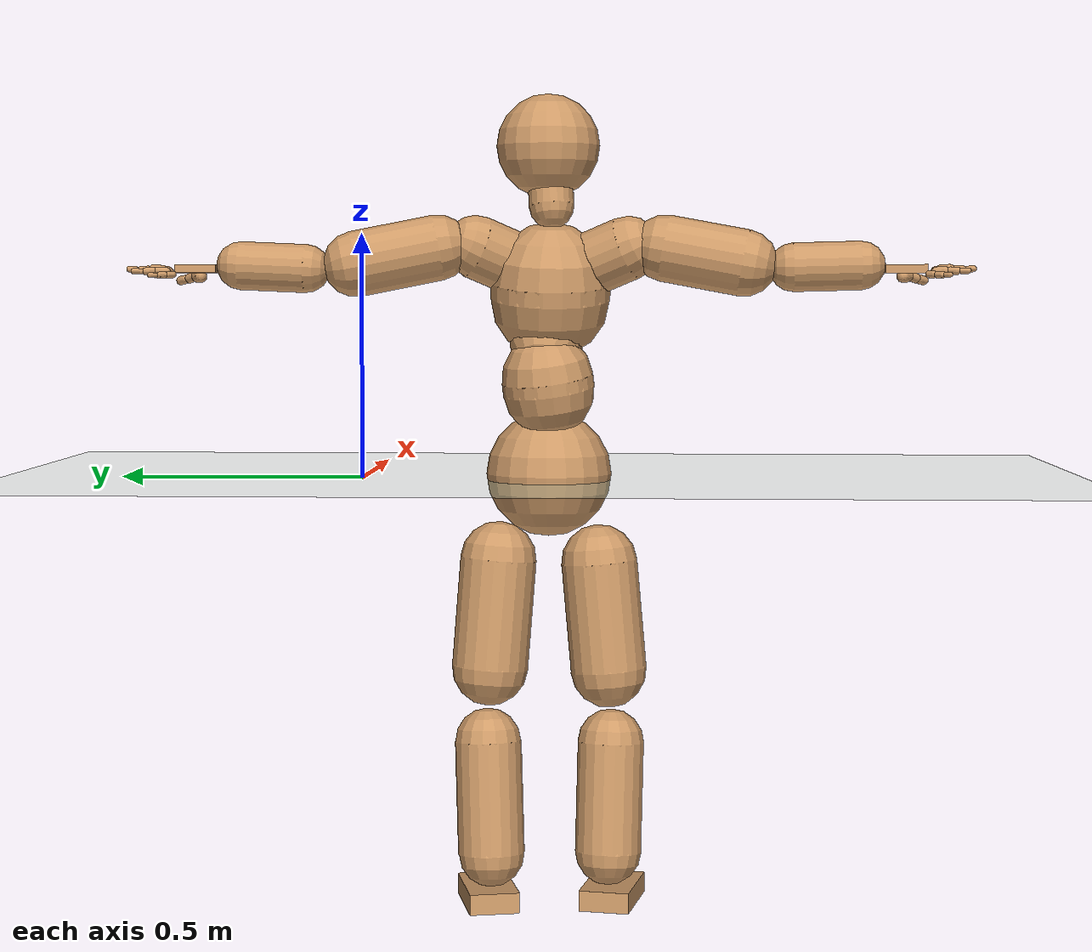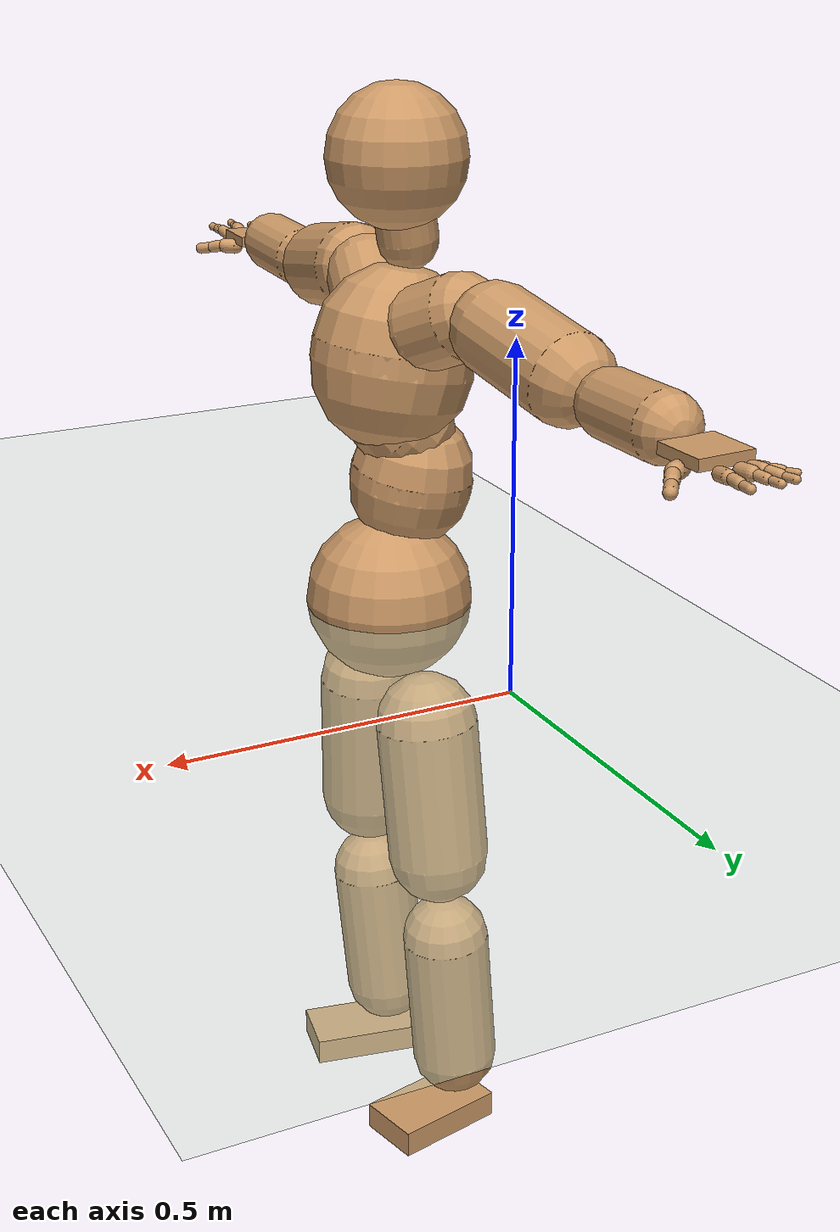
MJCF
<mujoco model="humanoid">
  <compiler coordinate="local" angle="radian"/>
  <default>
    <joint damping="0.0" armature="0.01" stiffness="0.0" limited="true"/>
    <geom conaffinity="1" condim="3" contype="7" margin="0.001" rgba="0.8 0.6 .4 1"/>
  </default>
  <asset>
    <texture type="skybox" builtin="gradient" rgb1=".4 .5 .6" rgb2="0 0 0" width="100" height="100"/>
    <texture builtin="flat" height="1278" mark="cross" markrgb="1 1 1" name="texgeom" random="0.01" rgb1="0.8 0.6 0.4" rgb2="0.8 0.6 0.4" type="cube" width="127"/>
    <texture builtin="checker" height="100" name="texplane" rgb1="0 0 0" rgb2="0.8 0.8 0.8" type="2d" width="100"/>
    <material name="MatPlane" reflectance="0.5" shininess="1" specular="1" texrepeat="60 60" texture="texplane"/>
    <material name="geom" texture="texgeom" texuniform="true"/>
  </asset>
  <worldbody>
    <light cutoff="100" diffuse="1 1 1" dir="-0 0 -1.3" directional="true" exponent="1" pos="0 0 1.3" specular=".1 .1 .1"/>
    <geom conaffinity="1" condim="3" name="floor" pos="0 0 0" rgba="0.8 0.9 0.8 1" size="100 100 .2" type="plane" material="MatPlane"/>
    <body name="Pelvis" pos="0.0013 -0.3837 0.0105">
      <freejoint name="Pelvis"/>
      <geom type="sphere" contype="1" conaffinity="1" density="500" size="0.1281" pos="0.0000 0.0000 0.0000" name="Pelvis"/>
      <body name="L_Hip" pos="-0.0085 0.0976 -0.1015">
        <joint name="L_Hip_x" type="hinge" pos="0 0 0" axis="1 0 0" stiffness="800" damping="80" armature="0.02" range="-180.0000 180.0000"/>
        <joint name="L_Hip_y" type="hinge" pos="0 0 0" axis="0 1 0" stiffness="800" damping="80" armature="0.02" range="-180.0000 180.0000"/>
        <joint name="L_Hip_z" type="hinge" pos="0 0 0" axis="0 0 1" stiffness="800" damping="80" armature="0.02" range="-180.0000 180.0000"/>
        <geom type="capsule" contype="1" conaffinity="1" density="500" fromto="-0.0040 0.0057 -0.0747 -0.0158 0.0227 -0.2989" size="0.0782" name="L_Hip"/>
        <body name="L_Knee" pos="-0.0198 0.0283 -0.3736">
          <joint name="L_Knee_x" type="hinge" pos="0 0 0" axis="1 0 0" stiffness="800" damping="80" armature="0.02" range="-180.0000 180.0000"/>
          <joint name="L_Knee_y" type="hinge" pos="0 0 0" axis="0 1 0" stiffness="800" damping="80" armature="0.02" range="-180.0000 180.0000"/>
          <joint name="L_Knee_z" type="hinge" pos="0 0 0" axis="0 0 1" stiffness="800" damping="80" armature="0.02" range="-180.0000 180.0000"/>
          <geom type="capsule" contype="1" conaffinity="1" density="500" fromto="-0.0070 -0.0026 -0.0769 -0.0280 -0.0103 -0.3076" size="0.0682" name="L_Knee"/>
          <body name="L_Ankle" pos="-0.035 -0.0128 -0.3846">
            <joint name="L_Ankle_x" type="hinge" pos="0 0 0" axis="1 0 0" stiffness="800" damping="80" armature="0.02" range="-180.0000 180.0000"/>
            <joint name="L_Ankle_y" type="hinge" pos="0 0 0" axis="0 1 0" stiffness="800" damping="80" armature="0.02" range="-180.0000 180.0000"/>
            <joint name="L_Ankle_z" type="hinge" pos="0 0 0" axis="0 0 1" stiffness="800" damping="80" armature="0.02" range="-180.0000 180.0000"/>
            <geom type="box" contype="1" conaffinity="1" density="500" pos="0.0554 0.0121 -0.0203" size="0.0894 0.0518 0.0213" quat="0.9942 0.0000 0.0000 0.1077" name="L_Ankle"/>
            <body name="L_Toe" pos="0.1108 0.0243 -0.0406">
              <joint name="L_Toe_x" type="hinge" pos="0 0 0" axis="1 0 0" stiffness="500" damping="50" armature="0.02" range="-180.0000 180.0000"/>
              <joint name="L_Toe_y" type="hinge" pos="0 0 0" axis="0 1 0" stiffness="500" damping="50" armature="0.02" range="-180.0000 180.0000"/>
              <joint name="L_Toe_z" type="hinge" pos="0 0 0" axis="0 0 1" stiffness="500" damping="50" armature="0.02" range="-180.0000 180.0000"/>
              <geom type="box" contype="1" conaffinity="1" density="500" pos="0.0000 0.0000 0.0211" size="0.001 0.0025 0.0011" quat="0.9935 0.0000 0.0000 0.1143" name="L_Toe"/>
            </body>
          </body>
        </body>
      </body>
      <body name="R_Hip" pos="-0.009 -0.0975 -0.1076">
        <joint name="R_Hip_x" type="hinge" pos="0 0 0" axis="1 0 0" stiffness="800" damping="80" armature="0.02" range="-180.0000 180.0000"/>
        <joint name="R_Hip_y" type="hinge" pos="0 0 0" axis="0 1 0" stiffness="800" damping="80" armature="0.02" range="-180.0000 180.0000"/>
        <joint name="R_Hip_z" type="hinge" pos="0 0 0" axis="0 0 1" stiffness="800" damping="80" armature="0.02" range="-180.0000 180.0000"/>
        <geom type="capsule" contype="1" conaffinity="1" density="500" fromto="-0.0026 -0.0067 -0.0740 -0.0102 -0.0269 -0.2959" size="0.078" name="R_Hip"/>
        <body name="R_Knee" pos="-0.0128 -0.0336 -0.3699">
          <joint name="R_Knee_x" type="hinge" pos="0 0 0" axis="1 0 0" stiffness="800" damping="80" armature="0.02" range="-180.0000 180.0000"/>
          <joint name="R_Knee_y" type="hinge" pos="0 0 0" axis="0 1 0" stiffness="800" damping="80" armature="0.02" range="-180.0000 180.0000"/>
          <joint name="R_Knee_z" type="hinge" pos="0 0 0" axis="0 0 1" stiffness="800" damping="80" armature="0.02" range="-180.0000 180.0000"/>
          <geom type="capsule" contype="1" conaffinity="1" density="500" fromto="-0.0065 0.0015 -0.0751 -0.0259 0.0062 -0.3003" size="0.0682" name="R_Knee"/>
          <body name="R_Ankle" pos="-0.0324 0.0077 -0.3754">
            <joint name="R_Ankle_x" type="hinge" pos="0 0 0" axis="1 0 0" stiffness="800" damping="80" armature="0.02" range="-180.0000 180.0000"/>
            <joint name="R_Ankle_y" type="hinge" pos="0 0 0" axis="0 1 0" stiffness="800" damping="80" armature="0.02" range="-180.0000 180.0000"/>
            <joint name="R_Ankle_z" type="hinge" pos="0 0 0" axis="0 0 1" stiffness="800" damping="80" armature="0.02" range="-180.0000 180.0000"/>
            <geom type="box" contype="1" conaffinity="1" density="500" pos="0.0524 -0.0099 -0.0218" size="0.0894 0.0518 0.0213" quat="0.9956 0.0000 0.0000 -0.0935" name="R_Ankle"/>
            <body name="R_Toe" pos="0.1047 -0.0198 -0.0436">
              <joint name="R_Toe_x" type="hinge" pos="0 0 0" axis="1 0 0" stiffness="500" damping="50" armature="0.02" range="-180.0000 180.0000"/>
              <joint name="R_Toe_y" type="hinge" pos="0 0 0" axis="0 1 0" stiffness="500" damping="50" armature="0.02" range="-180.0000 180.0000"/>
              <joint name="R_Toe_z" type="hinge" pos="0 0 0" axis="0 0 1" stiffness="500" damping="50" armature="0.02" range="-180.0000 180.0000"/>
              <geom type="box" contype="1" conaffinity="1" density="500" pos="0.0000 0.0000 0.0226" size="0.001 0.0025 0.0011" quat="0.9966 0.0000 0.0000 -0.0827" name="R_Toe"/>
            </body>
          </body>
        </body>
      </body>
      <body name="Torso" pos="-0.0297 -0.0075 0.1217">
        <joint name="Torso_x" type="hinge" pos="0 0 0" axis="1 0 0" stiffness="1000" damping="100" armature="0.02" range="-180.0000 180.0000"/>
        <joint name="Torso_y" type="hinge" pos="0 0 0" axis="0 1 0" stiffness="1000" damping="100" armature="0.02" range="-180.0000 180.0000"/>
        <joint name="Torso_z" type="hinge" pos="0 0 0" axis="0 0 1" stiffness="1000" damping="100" armature="0.02" range="-180.0000 180.0000"/>
        <geom type="capsule" contype="1" conaffinity="1" density="500" fromto="-0.0106 0.0094 0.0747 -0.0071 0.0063 0.0498" size="0.0931" name="Torso"/>
        <body name="Spine" pos="-0.0177 0.0157 0.1244">
          <joint name="Spine_x" type="hinge" pos="0 0 0" axis="1 0 0" stiffness="1000" damping="100" armature="0.02" range="-180.0000 180.0000"/>
          <joint name="Spine_y" type="hinge" pos="0 0 0" axis="0 1 0" stiffness="1000" damping="100" armature="0.02" range="-180.0000 180.0000"/>
          <joint name="Spine_z" type="hinge" pos="0 0 0" axis="0 0 1" stiffness="1000" damping="100" armature="0.02" range="-180.0000 180.0000"/>
          <geom type="capsule" contype="1" conaffinity="1" density="500" fromto="0.0301 -0.0053 0.0297 0.0201 -0.0035 0.0198" size="0.0744" name="Spine"/>
          <body name="Chest" pos="0.0502 -0.0088 0.0495">
            <joint name="Chest_x" type="hinge" pos="0 0 0" axis="1 0 0" stiffness="1000" damping="100" armature="0.02" range="-180.0000 180.0000"/>
            <joint name="Chest_y" type="hinge" pos="0 0 0" axis="0 1 0" stiffness="1000" damping="100" armature="0.02" range="-180.0000 180.0000"/>
            <joint name="Chest_z" type="hinge" pos="0 0 0" axis="0 0 1" stiffness="1000" damping="100" armature="0.02" range="-180.0000 180.0000"/>
            <geom type="capsule" contype="1" conaffinity="1" density="500" fromto="-0.0170 -0.0023 0.0941 -0.0113 -0.0016 0.0627" size="0.1222" name="Chest"/>
            <body name="Neck" pos="-0.0464 -0.0076 0.2174">
              <joint name="Neck_x" type="hinge" pos="0 0 0" axis="1 0 0" stiffness="500" damping="50" armature="0.02" range="-180.0000 180.0000"/>
              <joint name="Neck_y" type="hinge" pos="0 0 0" axis="0 1 0" stiffness="500" damping="50" armature="0.02" range="-180.0000 180.0000"/>
              <joint name="Neck_z" type="hinge" pos="0 0 0" axis="0 0 1" stiffness="500" damping="50" armature="0.02" range="-180.0000 180.0000"/>
              <geom type="capsule" contype="1" conaffinity="1" density="500" fromto="0.0052 0.0020 0.0303 0.0206 0.0078 0.1211" size="0.0455" name="Neck"/>
              <body name="Head" pos="0.0258 0.0098 0.1514">
                <joint name="Head_x" type="hinge" pos="0 0 0" axis="1 0 0" stiffness="500" damping="50" armature="0.02" range="-180.0000 180.0000"/>
                <joint name="Head_y" type="hinge" pos="0 0 0" axis="0 1 0" stiffness="500" damping="50" armature="0.02" range="-180.0000 180.0000"/>
                <joint name="Head_z" type="hinge" pos="0 0 0" axis="0 0 1" stiffness="500" damping="50" armature="0.02" range="-180.0000 180.0000"/>
                <geom type="sphere" contype="1" conaffinity="1" density="500" size="0.1042" pos="0.0000 0.0000 0.0000" name="Head"/>
              </body>
            </body>
            <body name="L_Thorax" pos="-0.0149 0.0623 0.129">
              <joint name="L_Thorax_x" type="hinge" pos="0 0 0" axis="1 0 0" stiffness="500" damping="50" armature="0.02" range="-180.0000 180.0000"/>
              <joint name="L_Thorax_y" type="hinge" pos="0 0 0" axis="0 1 0" stiffness="500" damping="50" armature="0.02" range="-180.0000 180.0000"/>
              <joint name="L_Thorax_z" type="hinge" pos="0 0 0" axis="0 0 1" stiffness="500" damping="50" armature="0.02" range="-180.0000 180.0000"/>
              <geom type="capsule" contype="1" conaffinity="1" density="500" fromto="-0.0085 0.0211 0.0093 -0.0340 0.0846 0.0370" size="0.064" name="L_Thorax"/>
              <body name="L_Shoulder" pos="-0.0425 0.1057 0.0463">
                <joint name="L_Shoulder_x" type="hinge" pos="0 0 0" axis="1 0 0" stiffness="500" damping="50" armature="0.02" range="-180.0000 180.0000"/>
                <joint name="L_Shoulder_y" type="hinge" pos="0 0 0" axis="0 1 0" stiffness="500" damping="50" armature="0.02" range="-180.0000 180.0000"/>
                <joint name="L_Shoulder_z" type="hinge" pos="0 0 0" axis="0 0 1" stiffness="500" damping="50" armature="0.02" range="-180.0000 180.0000"/>
                <geom type="capsule" contype="1" conaffinity="1" density="500" fromto="-0.0064 0.0546 -0.0110 -0.0255 0.2185 -0.0439" size="0.0664" name="L_Shoulder"/>
                <body name="L_Elbow" pos="-0.0319 0.2731 -0.0549">
                  <joint name="L_Elbow_x" type="hinge" pos="0 0 0" axis="1 0 0" stiffness="500" damping="50" armature="0.02" range="-720.0000 720.0000"/>
                  <joint name="L_Elbow_y" type="hinge" pos="0 0 0" axis="0 1 0" stiffness="500" damping="50" armature="0.02" range="-720.0000 720.0000"/>
                  <joint name="L_Elbow_z" type="hinge" pos="0 0 0" axis="0 0 1" stiffness="500" damping="50" armature="0.02" range="-720.0000 720.0000"/>
                  <geom type="capsule" contype="1" conaffinity="1" density="500" fromto="0.0019 0.0446 0.0020 0.0076 0.1786 0.0080" size="0.0484" name="L_Elbow"/>
                  <body name="L_Wrist" pos="0.0094 0.2232 0.01">
                    <joint name="L_Wrist_x" type="hinge" pos="0 0 0" axis="1 0 0" stiffness="300" damping="30" armature="0.02" range="-180.0000 180.0000"/>
                    <joint name="L_Wrist_y" type="hinge" pos="0 0 0" axis="0 1 0" stiffness="300" damping="30" armature="0.02" range="-180.0000 180.0000"/>
                    <joint name="L_Wrist_z" type="hinge" pos="0 0 0" axis="0 0 1" stiffness="300" damping="30" armature="0.02" range="-180.0000 180.0000"/>
                    <geom type="box" contype="1" conaffinity="1" density="500" pos="-0.0021 0.0427 -0.0083" size="0.041 0.0417 0.0082" quat="0.7246 0.0000 0.0000 -0.6891" name="L_Wrist"/>
                    <body name="L_Index1" pos="0.0217 0.1012 -0.0141">
                      <joint name="L_Index1_x" type="hinge" pos="0 0 0" axis="1 0 0" stiffness="100" damping="10" armature="0.02" range="-180.0000 180.0000"/>
                      <joint name="L_Index1_y" type="hinge" pos="0 0 0" axis="0 1 0" stiffness="100" damping="10" armature="0.02" range="-180.0000 180.0000"/>
                      <joint name="L_Index1_z" type="hinge" pos="0 0 0" axis="0 0 1" stiffness="100" damping="10" armature="0.02" range="-180.0000 180.0000"/>
                      <geom type="capsule" contype="1" conaffinity="1" density="500" fromto="0.0006 0.0063 0.0007 0.0022 0.0252 0.0026" size="0.0096" name="L_Index1"/>
                      <body name="L_Index2" pos="0.0028 0.0316 0.0033">
                        <joint name="L_Index2_x" type="hinge" pos="0 0 0" axis="1 0 0" stiffness="100" damping="10" armature="0.02" range="-180.0000 180.0000"/>
                        <joint name="L_Index2_y" type="hinge" pos="0 0 0" axis="0 1 0" stiffness="100" damping="10" armature="0.02" range="-180.0000 180.0000"/>
                        <joint name="L_Index2_z" type="hinge" pos="0 0 0" axis="0 0 1" stiffness="100" damping="10" armature="0.02" range="-180.0000 180.0000"/>
                        <geom type="capsule" contype="1" conaffinity="1" density="500" fromto="0.0001 0.0044 -0.0003 0.0002 0.0177 -0.0011" size="0.0078" name="L_Index2"/>
                        <body name="L_Index3" pos="0.0003 0.0222 -0.0013">
                          <joint name="L_Index3_x" type="hinge" pos="0 0 0" axis="1 0 0" stiffness="100" damping="10" armature="0.02" range="-180.0000 180.0000"/>
                          <joint name="L_Index3_y" type="hinge" pos="0 0 0" axis="0 1 0" stiffness="100" damping="10" armature="0.02" range="-180.0000 180.0000"/>
                          <joint name="L_Index3_z" type="hinge" pos="0 0 0" axis="0 0 1" stiffness="100" damping="10" armature="0.02" range="-180.0000 180.0000"/>
                          <geom type="capsule" contype="1" conaffinity="1" density="500" fromto="0.0005 0.0048 0.0001 0.0018 0.0193 0.0005" size="0.0064" name="L_Index3"/>
                        </body>
                      </body>
                    </body>
                    <body name="L_Middle1" pos="-0.0021 0.108 -0.0112">
                      <joint name="L_Middle1_x" type="hinge" pos="0 0 0" axis="1 0 0" stiffness="100" damping="10" armature="0.02" range="-180.0000 180.0000"/>
                      <joint name="L_Middle1_y" type="hinge" pos="0 0 0" axis="0 1 0" stiffness="100" damping="10" armature="0.02" range="-180.0000 180.0000"/>
                      <joint name="L_Middle1_z" type="hinge" pos="0 0 0" axis="0 0 1" stiffness="100" damping="10" armature="0.02" range="-180.0000 180.0000"/>
                      <geom type="capsule" contype="1" conaffinity="1" density="500" fromto="-0.0007 0.0060 0.0004 -0.0029 0.0239 0.0015" size="0.0099" name="L_Middle1"/>
                      <body name="L_Middle2" pos="-0.0036 0.0298 0.0019">
                        <joint name="L_Middle2_x" type="hinge" pos="0 0 0" axis="1 0 0" stiffness="100" damping="10" armature="0.02" range="-180.0000 180.0000"/>
                        <joint name="L_Middle2_y" type="hinge" pos="0 0 0" axis="0 1 0" stiffness="100" damping="10" armature="0.02" range="-180.0000 180.0000"/>
                        <joint name="L_Middle2_z" type="hinge" pos="0 0 0" axis="0 0 1" stiffness="100" damping="10" armature="0.02" range="-180.0000 180.0000"/>
                        <geom type="capsule" contype="1" conaffinity="1" density="500" fromto="-0.0007 0.0046 -0.0001 -0.0029 0.0183 -0.0006" size="0.0071" name="L_Middle2"/>
                        <body name="L_Middle3" pos="-0.0037 0.0229 -0.0007">
                          <joint name="L_Middle3_x" type="hinge" pos="0 0 0" axis="1 0 0" stiffness="100" damping="10" armature="0.02" range="-180.0000 180.0000"/>
                          <joint name="L_Middle3_y" type="hinge" pos="0 0 0" axis="0 1 0" stiffness="100" damping="10" armature="0.02" range="-180.0000 180.0000"/>
                          <joint name="L_Middle3_z" type="hinge" pos="0 0 0" axis="0 0 1" stiffness="100" damping="10" armature="0.02" range="-180.0000 180.0000"/>
                          <geom type="capsule" contype="1" conaffinity="1" density="500" fromto="-0.0003 0.0050 0.0003 -0.0013 0.0199 0.0010" size="0.0058" name="L_Middle3"/>
                        </body>
                      </body>
                    </body>
                    <body name="L_Pinky1" pos="-0.0431 0.0821 -0.02">
                      <joint name="L_Pinky1_x" type="hinge" pos="0 0 0" axis="1 0 0" stiffness="100" damping="10" armature="0.02" range="-180.0000 180.0000"/>
                      <joint name="L_Pinky1_y" type="hinge" pos="0 0 0" axis="0 1 0" stiffness="100" damping="10" armature="0.02" range="-180.0000 180.0000"/>
                      <joint name="L_Pinky1_z" type="hinge" pos="0 0 0" axis="0 0 1" stiffness="100" damping="10" armature="0.02" range="-180.0000 180.0000"/>
                      <geom type="capsule" contype="1" conaffinity="1" density="500" fromto="-0.0024 0.0029 -0.0001 -0.0097 0.0117 -0.0006" size="0.007" name="L_Pinky1"/>
                      <body name="L_Pinky2" pos="-0.0121 0.0147 -0.0007">
                        <joint name="L_Pinky2_x" type="hinge" pos="0 0 0" axis="1 0 0" stiffness="100" damping="10" armature="0.02" range="-180.0000 180.0000"/>
                        <joint name="L_Pinky2_y" type="hinge" pos="0 0 0" axis="0 1 0" stiffness="100" damping="10" armature="0.02" range="-180.0000 180.0000"/>
                        <joint name="L_Pinky2_z" type="hinge" pos="0 0 0" axis="0 0 1" stiffness="100" damping="10" armature="0.02" range="-180.0000 180.0000"/>
                        <geom type="capsule" contype="1" conaffinity="1" density="500" fromto="-0.0023 0.0030 -0.0003 -0.0092 0.0120 -0.0010" size="0.0067" name="L_Pinky2"/>
                        <body name="L_Pinky3" pos="-0.0115 0.015 -0.0013">
                          <joint name="L_Pinky3_x" type="hinge" pos="0 0 0" axis="1 0 0" stiffness="100" damping="10" armature="0.02" range="-180.0000 180.0000"/>
                          <joint name="L_Pinky3_y" type="hinge" pos="0 0 0" axis="0 1 0" stiffness="100" damping="10" armature="0.02" range="-180.0000 180.0000"/>
                          <joint name="L_Pinky3_z" type="hinge" pos="0 0 0" axis="0 0 1" stiffness="100" damping="10" armature="0.02" range="-180.0000 180.0000"/>
                          <geom type="capsule" contype="1" conaffinity="1" density="500" fromto="-0.0019 0.0034 0.0001 -0.0076 0.0136 0.0006" size="0.005" name="L_Pinky3"/>
                        </body>
                      </body>
                    </body>
                    <body name="L_Ring1" pos="-0.0265 0.0958 -0.0143">
                      <joint name="L_Ring1_x" type="hinge" pos="0 0 0" axis="1 0 0" stiffness="100" damping="10" armature="0.02" range="-180.0000 180.0000"/>
                      <joint name="L_Ring1_y" type="hinge" pos="0 0 0" axis="0 1 0" stiffness="100" damping="10" armature="0.02" range="-180.0000 180.0000"/>
                      <joint name="L_Ring1_z" type="hinge" pos="0 0 0" axis="0 0 1" stiffness="100" damping="10" armature="0.02" range="-180.0000 180.0000"/>
                      <geom type="capsule" contype="1" conaffinity="1" density="500" fromto="-0.0011 0.0055 0.0004 -0.0042 0.0220 0.0014" size="0.0085" name="L_Ring1"/>
                      <body name="L_Ring2" pos="-0.0053 0.0275 0.0018">
                        <joint name="L_Ring2_x" type="hinge" pos="0 0 0" axis="1 0 0" stiffness="100" damping="10" armature="0.02" range="-180.0000 180.0000"/>
                        <joint name="L_Ring2_y" type="hinge" pos="0 0 0" axis="0 1 0" stiffness="100" damping="10" armature="0.02" range="-180.0000 180.0000"/>
                        <joint name="L_Ring2_z" type="hinge" pos="0 0 0" axis="0 0 1" stiffness="100" damping="10" armature="0.02" range="-180.0000 180.0000"/>
                        <geom type="capsule" contype="1" conaffinity="1" density="500" fromto="-0.0014 0.0044 -0.0003 -0.0057 0.0178 -0.0010" size="0.0075" name="L_Ring2"/>
                        <body name="L_Ring3" pos="-0.0071 0.0222 -0.0013">
                          <joint name="L_Ring3_x" type="hinge" pos="0 0 0" axis="1 0 0" stiffness="100" damping="10" armature="0.02" range="-180.0000 180.0000"/>
                          <joint name="L_Ring3_y" type="hinge" pos="0 0 0" axis="0 1 0" stiffness="100" damping="10" armature="0.02" range="-180.0000 180.0000"/>
                          <joint name="L_Ring3_z" type="hinge" pos="0 0 0" axis="0 0 1" stiffness="100" damping="10" armature="0.02" range="-180.0000 180.0000"/>
                          <geom type="capsule" contype="1" conaffinity="1" density="500" fromto="-0.0010 0.0048 0.0001 -0.0041 0.0194 0.0006" size="0.0056" name="L_Ring3"/>
                        </body>
                      </body>
                    </body>
                    <body name="L_Thumb1" pos="0.0285 0.0404 -0.0239">
                      <joint name="L_Thumb1_x" type="hinge" pos="0 0 0" axis="1 0 0" stiffness="100" damping="10" armature="0.02" range="-180.0000 180.0000"/>
                      <joint name="L_Thumb1_y" type="hinge" pos="0 0 0" axis="0 1 0" stiffness="100" damping="10" armature="0.02" range="-180.0000 180.0000"/>
                      <joint name="L_Thumb1_z" type="hinge" pos="0 0 0" axis="0 0 1" stiffness="100" damping="10" armature="0.02" range="-180.0000 180.0000"/>
                      <geom type="capsule" contype="1" conaffinity="1" density="500" fromto="0.0049 0.0033 0.0003 0.0196 0.0133 0.0013" size="0.0125" name="L_Thumb1"/>
                      <body name="L_Thumb2" pos="0.0245 0.0166 0.0017">
                        <joint name="L_Thumb2_x" type="hinge" pos="0 0 0" axis="1 0 0" stiffness="100" damping="10" armature="0.02" range="-180.0000 180.0000"/>
                        <joint name="L_Thumb2_y" type="hinge" pos="0 0 0" axis="0 1 0" stiffness="100" damping="10" armature="0.02" range="-180.0000 180.0000"/>
                        <joint name="L_Thumb2_z" type="hinge" pos="0 0 0" axis="0 0 1" stiffness="100" damping="10" armature="0.02" range="-180.0000 180.0000"/>
                        <geom type="capsule" contype="1" conaffinity="1" density="500" fromto="0.0029 0.0040 -0.0012 0.0115 0.0159 -0.0048" size="0.0099" name="L_Thumb2"/>
                        <body name="L_Thumb3" pos="0.0144 0.0199 -0.006">
                          <joint name="L_Thumb3_x" type="hinge" pos="0 0 0" axis="1 0 0" stiffness="100" damping="10" armature="0.02" range="-180.0000 180.0000"/>
                          <joint name="L_Thumb3_y" type="hinge" pos="0 0 0" axis="0 1 0" stiffness="100" damping="10" armature="0.02" range="-180.0000 180.0000"/>
                          <joint name="L_Thumb3_z" type="hinge" pos="0 0 0" axis="0 0 1" stiffness="100" damping="10" armature="0.02" range="-180.0000 180.0000"/>
                          <geom type="capsule" contype="1" conaffinity="1" density="500" fromto="0.0033 0.0044 -0.0008 0.0131 0.0175 -0.0032" size="0.009" name="L_Thumb3"/>
                        </body>
                      </body>
                    </body>
                  </body>
                </body>
              </body>
            </body>
            <body name="R_Thorax" pos="-0.0237 -0.0665 0.1241">
              <joint name="R_Thorax_x" type="hinge" pos="0 0 0" axis="1 0 0" stiffness="500" damping="50" armature="0.02" range="-180.0000 180.0000"/>
              <joint name="R_Thorax_y" type="hinge" pos="0 0 0" axis="0 1 0" stiffness="500" damping="50" armature="0.02" range="-180.0000 180.0000"/>
              <joint name="R_Thorax_z" type="hinge" pos="0 0 0" axis="0 0 1" stiffness="500" damping="50" armature="0.02" range="-180.0000 180.0000"/>
              <geom type="capsule" contype="1" conaffinity="1" density="500" fromto="-0.0065 -0.0231 0.0097 -0.0261 -0.0924 0.0388" size="0.0652" name="R_Thorax"/>
              <body name="R_Shoulder" pos="-0.0326 -0.1155 0.0485">
                <joint name="R_Shoulder_x" type="hinge" pos="0 0 0" axis="1 0 0" stiffness="500" damping="50" armature="0.02" range="-180.0000 180.0000"/>
                <joint name="R_Shoulder_y" type="hinge" pos="0 0 0" axis="0 1 0" stiffness="500" damping="50" armature="0.02" range="-180.0000 180.0000"/>
                <joint name="R_Shoulder_z" type="hinge" pos="0 0 0" axis="0 0 1" stiffness="500" damping="50" armature="0.02" range="-180.0000 180.0000"/>
                <geom type="capsule" contype="1" conaffinity="1" density="500" fromto="-0.0049 -0.0524 -0.0098 -0.0195 -0.2097 -0.0394" size="0.067" name="R_Shoulder"/>
                <body name="R_Elbow" pos="-0.0244 -0.2622 -0.0492">
                  <joint name="R_Elbow_x" type="hinge" pos="0 0 0" axis="1 0 0" stiffness="500" damping="50" armature="0.02" range="-720.0000 720.0000"/>
                  <joint name="R_Elbow_y" type="hinge" pos="0 0 0" axis="0 1 0" stiffness="500" damping="50" armature="0.02" range="-720.0000 720.0000"/>
                  <joint name="R_Elbow_z" type="hinge" pos="0 0 0" axis="0 0 1" stiffness="500" damping="50" armature="0.02" range="-720.0000 720.0000"/>
                  <geom type="capsule" contype="1" conaffinity="1" density="500" fromto="-0.0002 -0.0446 0.0012 -0.0010 -0.1784 0.0046" size="0.0485" name="R_Elbow"/>
                  <body name="R_Wrist" pos="-0.0012 -0.223 0.0058">
                    <joint name="R_Wrist_x" type="hinge" pos="0 0 0" axis="1 0 0" stiffness="300" damping="30" armature="0.02" range="-180.0000 180.0000"/>
                    <joint name="R_Wrist_y" type="hinge" pos="0 0 0" axis="0 1 0" stiffness="300" damping="30" armature="0.02" range="-180.0000 180.0000"/>
                    <joint name="R_Wrist_z" type="hinge" pos="0 0 0" axis="0 0 1" stiffness="300" damping="30" armature="0.02" range="-180.0000 180.0000"/>
                    <geom type="box" contype="1" conaffinity="1" density="500" pos="-0.0011 -0.0421 -0.0078" size="0.041 0.039 0.0084" quat="0.7161 0.0000 0.0000 0.6979" name="R_Wrist"/>
                    <body name="R_Index1" pos="0.0239 -0.1 -0.013">
                      <joint name="R_Index1_x" type="hinge" pos="0 0 0" axis="1 0 0" stiffness="100" damping="10" armature="0.02" range="-180.0000 180.0000"/>
                      <joint name="R_Index1_y" type="hinge" pos="0 0 0" axis="0 1 0" stiffness="100" damping="10" armature="0.02" range="-180.0000 180.0000"/>
                      <joint name="R_Index1_z" type="hinge" pos="0 0 0" axis="0 0 1" stiffness="100" damping="10" armature="0.02" range="-180.0000 180.0000"/>
                      <geom type="capsule" contype="1" conaffinity="1" density="500" fromto="0.0006 -0.0063 0.0007 0.0022 -0.0252 0.0026" size="0.0096" name="R_Index1"/>
                      <body name="R_Index2" pos="0.0028 -0.0315 0.0033">
                        <joint name="R_Index2_x" type="hinge" pos="0 0 0" axis="1 0 0" stiffness="100" damping="10" armature="0.02" range="-180.0000 180.0000"/>
                        <joint name="R_Index2_y" type="hinge" pos="0 0 0" axis="0 1 0" stiffness="100" damping="10" armature="0.02" range="-180.0000 180.0000"/>
                        <joint name="R_Index2_z" type="hinge" pos="0 0 0" axis="0 0 1" stiffness="100" damping="10" armature="0.02" range="-180.0000 180.0000"/>
                        <geom type="capsule" contype="1" conaffinity="1" density="500" fromto="0.0001 -0.0044 -0.0003 0.0002 -0.0177 -0.0011" size="0.0078" name="R_Index2"/>
                        <body name="R_Index3" pos="0.0003 -0.0222 -0.0013">
                          <joint name="R_Index3_x" type="hinge" pos="0 0 0" axis="1 0 0" stiffness="100" damping="10" armature="0.02" range="-180.0000 180.0000"/>
                          <joint name="R_Index3_y" type="hinge" pos="0 0 0" axis="0 1 0" stiffness="100" damping="10" armature="0.02" range="-180.0000 180.0000"/>
                          <joint name="R_Index3_z" type="hinge" pos="0 0 0" axis="0 0 1" stiffness="100" damping="10" armature="0.02" range="-180.0000 180.0000"/>
                          <geom type="capsule" contype="1" conaffinity="1" density="500" fromto="0.0005 -0.0040 0.0001 0.0018 -0.0161 0.0005" size="0.0067" name="R_Index3"/>
                        </body>
                      </body>
                    </body>
                    <body name="R_Middle1" pos="0 -0.1068 -0.0101">
                      <joint name="R_Middle1_x" type="hinge" pos="0 0 0" axis="1 0 0" stiffness="100" damping="10" armature="0.02" range="-180.0000 180.0000"/>
                      <joint name="R_Middle1_y" type="hinge" pos="0 0 0" axis="0 1 0" stiffness="100" damping="10" armature="0.02" range="-180.0000 180.0000"/>
                      <joint name="R_Middle1_z" type="hinge" pos="0 0 0" axis="0 0 1" stiffness="100" damping="10" armature="0.02" range="-180.0000 180.0000"/>
                      <geom type="capsule" contype="1" conaffinity="1" density="500" fromto="-0.0007 -0.0060 0.0004 -0.0029 -0.0239 0.0015" size="0.0099" name="R_Middle1"/>
                      <body name="R_Middle2" pos="-0.0036 -0.0298 0.0019">
                        <joint name="R_Middle2_x" type="hinge" pos="0 0 0" axis="1 0 0" stiffness="100" damping="10" armature="0.02" range="-180.0000 180.0000"/>
                        <joint name="R_Middle2_y" type="hinge" pos="0 0 0" axis="0 1 0" stiffness="100" damping="10" armature="0.02" range="-180.0000 180.0000"/>
                        <joint name="R_Middle2_z" type="hinge" pos="0 0 0" axis="0 0 1" stiffness="100" damping="10" armature="0.02" range="-180.0000 180.0000"/>
                        <geom type="capsule" contype="1" conaffinity="1" density="500" fromto="-0.0007 -0.0046 -0.0001 -0.0029 -0.0183 -0.0006" size="0.0071" name="R_Middle2"/>
                        <body name="R_Middle3" pos="-0.0037 -0.0229 -0.0007">
                          <joint name="R_Middle3_x" type="hinge" pos="0 0 0" axis="1 0 0" stiffness="100" damping="10" armature="0.02" range="-180.0000 180.0000"/>
                          <joint name="R_Middle3_y" type="hinge" pos="0 0 0" axis="0 1 0" stiffness="100" damping="10" armature="0.02" range="-180.0000 180.0000"/>
                          <joint name="R_Middle3_z" type="hinge" pos="0 0 0" axis="0 0 1" stiffness="100" damping="10" armature="0.02" range="-180.0000 180.0000"/>
                          <geom type="capsule" contype="1" conaffinity="1" density="500" fromto="-0.0003 -0.0042 0.0003 -0.0013 -0.0167 0.0010" size="0.0061" name="R_Middle3"/>
                        </body>
                      </body>
                    </body>
                    <body name="R_Pinky1" pos="-0.041 -0.0809 -0.0189">
                      <joint name="R_Pinky1_x" type="hinge" pos="0 0 0" axis="1 0 0" stiffness="100" damping="10" armature="0.02" range="-180.0000 180.0000"/>
                      <joint name="R_Pinky1_y" type="hinge" pos="0 0 0" axis="0 1 0" stiffness="100" damping="10" armature="0.02" range="-180.0000 180.0000"/>
                      <joint name="R_Pinky1_z" type="hinge" pos="0 0 0" axis="0 0 1" stiffness="100" damping="10" armature="0.02" range="-180.0000 180.0000"/>
                      <geom type="capsule" contype="1" conaffinity="1" density="500" fromto="-0.0024 -0.0029 -0.0001 -0.0097 -0.0117 -0.0006" size="0.007" name="R_Pinky1"/>
                      <body name="R_Pinky2" pos="-0.0121 -0.0147 -0.0007">
                        <joint name="R_Pinky2_x" type="hinge" pos="0 0 0" axis="1 0 0" stiffness="100" damping="10" armature="0.02" range="-180.0000 180.0000"/>
                        <joint name="R_Pinky2_y" type="hinge" pos="0 0 0" axis="0 1 0" stiffness="100" damping="10" armature="0.02" range="-180.0000 180.0000"/>
                        <joint name="R_Pinky2_z" type="hinge" pos="0 0 0" axis="0 0 1" stiffness="100" damping="10" armature="0.02" range="-180.0000 180.0000"/>
                        <geom type="capsule" contype="1" conaffinity="1" density="500" fromto="-0.0023 -0.0030 -0.0003 -0.0092 -0.0120 -0.0010" size="0.0067" name="R_Pinky2"/>
                        <body name="R_Pinky3" pos="-0.0115 -0.015 -0.0013">
                          <joint name="R_Pinky3_x" type="hinge" pos="0 0 0" axis="1 0 0" stiffness="100" damping="10" armature="0.02" range="-180.0000 180.0000"/>
                          <joint name="R_Pinky3_y" type="hinge" pos="0 0 0" axis="0 1 0" stiffness="100" damping="10" armature="0.02" range="-180.0000 180.0000"/>
                          <joint name="R_Pinky3_z" type="hinge" pos="0 0 0" axis="0 0 1" stiffness="100" damping="10" armature="0.02" range="-180.0000 180.0000"/>
                          <geom type="capsule" contype="1" conaffinity="1" density="500" fromto="-0.0019 -0.0026 0.0001 -0.0076 -0.0104 0.0006" size="0.0052" name="R_Pinky3"/>
                        </body>
                      </body>
                    </body>
                    <body name="R_Ring1" pos="-0.0244 -0.0946 -0.0132">
                      <joint name="R_Ring1_x" type="hinge" pos="0 0 0" axis="1 0 0" stiffness="100" damping="10" armature="0.02" range="-180.0000 180.0000"/>
                      <joint name="R_Ring1_y" type="hinge" pos="0 0 0" axis="0 1 0" stiffness="100" damping="10" armature="0.02" range="-180.0000 180.0000"/>
                      <joint name="R_Ring1_z" type="hinge" pos="0 0 0" axis="0 0 1" stiffness="100" damping="10" armature="0.02" range="-180.0000 180.0000"/>
                      <geom type="capsule" contype="1" conaffinity="1" density="500" fromto="-0.0011 -0.0055 0.0004 -0.0042 -0.0220 0.0014" size="0.0085" name="R_Ring1"/>
                      <body name="R_Ring2" pos="-0.0053 -0.0275 0.0018">
                        <joint name="R_Ring2_x" type="hinge" pos="0 0 0" axis="1 0 0" stiffness="100" damping="10" armature="0.02" range="-180.0000 180.0000"/>
                        <joint name="R_Ring2_y" type="hinge" pos="0 0 0" axis="0 1 0" stiffness="100" damping="10" armature="0.02" range="-180.0000 180.0000"/>
                        <joint name="R_Ring2_z" type="hinge" pos="0 0 0" axis="0 0 1" stiffness="100" damping="10" armature="0.02" range="-180.0000 180.0000"/>
                        <geom type="capsule" contype="1" conaffinity="1" density="500" fromto="-0.0014 -0.0044 -0.0003 -0.0057 -0.0178 -0.0010" size="0.0075" name="R_Ring2"/>
                        <body name="R_Ring3" pos="-0.0071 -0.0222 -0.0013">
                          <joint name="R_Ring3_x" type="hinge" pos="0 0 0" axis="1 0 0" stiffness="100" damping="10" armature="0.02" range="-180.0000 180.0000"/>
                          <joint name="R_Ring3_y" type="hinge" pos="0 0 0" axis="0 1 0" stiffness="100" damping="10" armature="0.02" range="-180.0000 180.0000"/>
                          <joint name="R_Ring3_z" type="hinge" pos="0 0 0" axis="0 0 1" stiffness="100" damping="10" armature="0.02" range="-180.0000 180.0000"/>
                          <geom type="capsule" contype="1" conaffinity="1" density="500" fromto="-0.0010 -0.0040 0.0001 -0.0041 -0.0162 0.0006" size="0.0059" name="R_Ring3"/>
                        </body>
                      </body>
                    </body>
                    <body name="R_Thumb1" pos="0.0306 -0.0392 -0.0228">
                      <joint name="R_Thumb1_x" type="hinge" pos="0 0 0" axis="1 0 0" stiffness="100" damping="10" armature="0.02" range="-180.0000 180.0000"/>
                      <joint name="R_Thumb1_y" type="hinge" pos="0 0 0" axis="0 1 0" stiffness="100" damping="10" armature="0.02" range="-180.0000 180.0000"/>
                      <joint name="R_Thumb1_z" type="hinge" pos="0 0 0" axis="0 0 1" stiffness="100" damping="10" armature="0.02" range="-180.0000 180.0000"/>
                      <geom type="capsule" contype="1" conaffinity="1" density="500" fromto="0.0049 -0.0033 0.0003 0.0196 -0.0133 0.0013" size="0.0125" name="R_Thumb1"/>
                      <body name="R_Thumb2" pos="0.0245 -0.0166 0.0017">
                        <joint name="R_Thumb2_x" type="hinge" pos="0 0 0" axis="1 0 0" stiffness="100" damping="10" armature="0.02" range="-180.0000 180.0000"/>
                        <joint name="R_Thumb2_y" type="hinge" pos="0 0 0" axis="0 1 0" stiffness="100" damping="10" armature="0.02" range="-180.0000 180.0000"/>
                        <joint name="R_Thumb2_z" type="hinge" pos="0 0 0" axis="0 0 1" stiffness="100" damping="10" armature="0.02" range="-180.0000 180.0000"/>
                        <geom type="capsule" contype="1" conaffinity="1" density="500" fromto="0.0029 -0.0040 -0.0012 0.0115 -0.0159 -0.0048" size="0.0099" name="R_Thumb2"/>
                        <body name="R_Thumb3" pos="0.0144 -0.0199 -0.006">
                          <joint name="R_Thumb3_x" type="hinge" pos="0 0 0" axis="1 0 0" stiffness="100" damping="10" armature="0.02" range="-180.0000 180.0000"/>
                          <joint name="R_Thumb3_y" type="hinge" pos="0 0 0" axis="0 1 0" stiffness="100" damping="10" armature="0.02" range="-180.0000 180.0000"/>
                          <joint name="R_Thumb3_z" type="hinge" pos="0 0 0" axis="0 0 1" stiffness="100" damping="10" armature="0.02" range="-180.0000 180.0000"/>
                          <geom type="capsule" contype="1" conaffinity="1" density="500" fromto="0.0033 -0.0036 -0.0008 0.0131 -0.0143 -0.0032" size="0.0092" name="R_Thumb3"/>
                        </body>
                      </body>
                    </body>
                  </body>
                </body>
              </body>
            </body>
          </body>
        </body>
      </body>
    </body>
  </worldbody>
  <actuator>
    <motor name="L_Hip_x" joint="L_Hip_x" gear="500"/>
    <motor name="L_Hip_y" joint="L_Hip_y" gear="500"/>
    <motor name="L_Hip_z" joint="L_Hip_z" gear="500"/>
    <motor name="L_Knee_x" joint="L_Knee_x" gear="500"/>
    <motor name="L_Knee_y" joint="L_Knee_y" gear="500"/>
    <motor name="L_Knee_z" joint="L_Knee_z" gear="500"/>
    <motor name="L_Ankle_x" joint="L_Ankle_x" gear="500"/>
    <motor name="L_Ankle_y" joint="L_Ankle_y" gear="500"/>
    <motor name="L_Ankle_z" joint="L_Ankle_z" gear="500"/>
    <motor name="L_Toe_x" joint="L_Toe_x" gear="500"/>
    <motor name="L_Toe_y" joint="L_Toe_y" gear="500"/>
    <motor name="L_Toe_z" joint="L_Toe_z" gear="500"/>
    <motor name="R_Hip_x" joint="R_Hip_x" gear="500"/>
    <motor name="R_Hip_y" joint="R_Hip_y" gear="500"/>
    <motor name="R_Hip_z" joint="R_Hip_z" gear="500"/>
    <motor name="R_Knee_x" joint="R_Knee_x" gear="500"/>
    <motor name="R_Knee_y" joint="R_Knee_y" gear="500"/>
    <motor name="R_Knee_z" joint="R_Knee_z" gear="500"/>
    <motor name="R_Ankle_x" joint="R_Ankle_x" gear="500"/>
    <motor name="R_Ankle_y" joint="R_Ankle_y" gear="500"/>
    <motor name="R_Ankle_z" joint="R_Ankle_z" gear="500"/>
    <motor name="R_Toe_x" joint="R_Toe_x" gear="500"/>
    <motor name="R_Toe_y" joint="R_Toe_y" gear="500"/>
    <motor name="R_Toe_z" joint="R_Toe_z" gear="500"/>
    <motor name="Torso_x" joint="Torso_x" gear="500"/>
    <motor name="Torso_y" joint="Torso_y" gear="500"/>
    <motor name="Torso_z" joint="Torso_z" gear="500"/>
    <motor name="Spine_x" joint="Spine_x" gear="500"/>
    <motor name="Spine_y" joint="Spine_y" gear="500"/>
    <motor name="Spine_z" joint="Spine_z" gear="500"/>
    <motor name="Chest_x" joint="Chest_x" gear="500"/>
    <motor name="Chest_y" joint="Chest_y" gear="500"/>
    <motor name="Chest_z" joint="Chest_z" gear="500"/>
    <motor name="Neck_x" joint="Neck_x" gear="500"/>
    <motor name="Neck_y" joint="Neck_y" gear="500"/>
    <motor name="Neck_z" joint="Neck_z" gear="500"/>
    <motor name="Head_x" joint="Head_x" gear="500"/>
    <motor name="Head_y" joint="Head_y" gear="500"/>
    <motor name="Head_z" joint="Head_z" gear="500"/>
    <motor name="L_Thorax_x" joint="L_Thorax_x" gear="500"/>
    <motor name="L_Thorax_y" joint="L_Thorax_y" gear="500"/>
    <motor name="L_Thorax_z" joint="L_Thorax_z" gear="500"/>
    <motor name="L_Shoulder_x" joint="L_Shoulder_x" gear="500"/>
    <motor name="L_Shoulder_y" joint="L_Shoulder_y" gear="500"/>
    <motor name="L_Shoulder_z" joint="L_Shoulder_z" gear="500"/>
    <motor name="L_Elbow_x" joint="L_Elbow_x" gear="500"/>
    <motor name="L_Elbow_y" joint="L_Elbow_y" gear="500"/>
    <motor name="L_Elbow_z" joint="L_Elbow_z" gear="500"/>
    <motor name="L_Wrist_x" joint="L_Wrist_x" gear="500"/>
    <motor name="L_Wrist_y" joint="L_Wrist_y" gear="500"/>
    <motor name="L_Wrist_z" joint="L_Wrist_z" gear="500"/>
    <motor name="L_Index1_x" joint="L_Index1_x" gear="500"/>
    <motor name="L_Index1_y" joint="L_Index1_y" gear="500"/>
    <motor name="L_Index1_z" joint="L_Index1_z" gear="500"/>
    <motor name="L_Index2_x" joint="L_Index2_x" gear="500"/>
    <motor name="L_Index2_y" joint="L_Index2_y" gear="500"/>
    <motor name="L_Index2_z" joint="L_Index2_z" gear="500"/>
    <motor name="L_Index3_x" joint="L_Index3_x" gear="500"/>
    <motor name="L_Index3_y" joint="L_Index3_y" gear="500"/>
    <motor name="L_Index3_z" joint="L_Index3_z" gear="500"/>
    <motor name="L_Middle1_x" joint="L_Middle1_x" gear="500"/>
    <motor name="L_Middle1_y" joint="L_Middle1_y" gear="500"/>
    <motor name="L_Middle1_z" joint="L_Middle1_z" gear="500"/>
    <motor name="L_Middle2_x" joint="L_Middle2_x" gear="500"/>
    <motor name="L_Middle2_y" joint="L_Middle2_y" gear="500"/>
    <motor name="L_Middle2_z" joint="L_Middle2_z" gear="500"/>
    <motor name="L_Middle3_x" joint="L_Middle3_x" gear="500"/>
    <motor name="L_Middle3_y" joint="L_Middle3_y" gear="500"/>
    <motor name="L_Middle3_z" joint="L_Middle3_z" gear="500"/>
    <motor name="L_Pinky1_x" joint="L_Pinky1_x" gear="500"/>
    <motor name="L_Pinky1_y" joint="L_Pinky1_y" gear="500"/>
    <motor name="L_Pinky1_z" joint="L_Pinky1_z" gear="500"/>
    <motor name="L_Pinky2_x" joint="L_Pinky2_x" gear="500"/>
    <motor name="L_Pinky2_y" joint="L_Pinky2_y" gear="500"/>
    <motor name="L_Pinky2_z" joint="L_Pinky2_z" gear="500"/>
    <motor name="L_Pinky3_x" joint="L_Pinky3_x" gear="500"/>
    <motor name="L_Pinky3_y" joint="L_Pinky3_y" gear="500"/>
    <motor name="L_Pinky3_z" joint="L_Pinky3_z" gear="500"/>
    <motor name="L_Ring1_x" joint="L_Ring1_x" gear="500"/>
    <motor name="L_Ring1_y" joint="L_Ring1_y" gear="500"/>
    <motor name="L_Ring1_z" joint="L_Ring1_z" gear="500"/>
    <motor name="L_Ring2_x" joint="L_Ring2_x" gear="500"/>
    <motor name="L_Ring2_y" joint="L_Ring2_y" gear="500"/>
    <motor name="L_Ring2_z" joint="L_Ring2_z" gear="500"/>
    <motor name="L_Ring3_x" joint="L_Ring3_x" gear="500"/>
    <motor name="L_Ring3_y" joint="L_Ring3_y" gear="500"/>
    <motor name="L_Ring3_z" joint="L_Ring3_z" gear="500"/>
    <motor name="L_Thumb1_x" joint="L_Thumb1_x" gear="500"/>
    <motor name="L_Thumb1_y" joint="L_Thumb1_y" gear="500"/>
    <motor name="L_Thumb1_z" joint="L_Thumb1_z" gear="500"/>
    <motor name="L_Thumb2_x" joint="L_Thumb2_x" gear="500"/>
    <motor name="L_Thumb2_y" joint="L_Thumb2_y" gear="500"/>
    <motor name="L_Thumb2_z" joint="L_Thumb2_z" gear="500"/>
    <motor name="L_Thumb3_x" joint="L_Thumb3_x" gear="500"/>
    <motor name="L_Thumb3_y" joint="L_Thumb3_y" gear="500"/>
    <motor name="L_Thumb3_z" joint="L_Thumb3_z" gear="500"/>
    <motor name="R_Thorax_x" joint="R_Thorax_x" gear="500"/>
    <motor name="R_Thorax_y" joint="R_Thorax_y" gear="500"/>
    <motor name="R_Thorax_z" joint="R_Thorax_z" gear="500"/>
    <motor name="R_Shoulder_x" joint="R_Shoulder_x" gear="500"/>
    <motor name="R_Shoulder_y" joint="R_Shoulder_y" gear="500"/>
    <motor name="R_Shoulder_z" joint="R_Shoulder_z" gear="500"/>
    <motor name="R_Elbow_x" joint="R_Elbow_x" gear="500"/>
    <motor name="R_Elbow_y" joint="R_Elbow_y" gear="500"/>
    <motor name="R_Elbow_z" joint="R_Elbow_z" gear="500"/>
    <motor name="R_Wrist_x" joint="R_Wrist_x" gear="500"/>
    <motor name="R_Wrist_y" joint="R_Wrist_y" gear="500"/>
    <motor name="R_Wrist_z" joint="R_Wrist_z" gear="500"/>
    <motor name="R_Index1_x" joint="R_Index1_x" gear="500"/>
    <motor name="R_Index1_y" joint="R_Index1_y" gear="500"/>
    <motor name="R_Index1_z" joint="R_Index1_z" gear="500"/>
    <motor name="R_Index2_x" joint="R_Index2_x" gear="500"/>
    <motor name="R_Index2_y" joint="R_Index2_y" gear="500"/>
    <motor name="R_Index2_z" joint="R_Index2_z" gear="500"/>
    <motor name="R_Index3_x" joint="R_Index3_x" gear="500"/>
    <motor name="R_Index3_y" joint="R_Index3_y" gear="500"/>
    <motor name="R_Index3_z" joint="R_Index3_z" gear="500"/>
    <motor name="R_Middle1_x" joint="R_Middle1_x" gear="500"/>
    <motor name="R_Middle1_y" joint="R_Middle1_y" gear="500"/>
    <motor name="R_Middle1_z" joint="R_Middle1_z" gear="500"/>
    <motor name="R_Middle2_x" joint="R_Middle2_x" gear="500"/>
    <motor name="R_Middle2_y" joint="R_Middle2_y" gear="500"/>
    <motor name="R_Middle2_z" joint="R_Middle2_z" gear="500"/>
    <motor name="R_Middle3_x" joint="R_Middle3_x" gear="500"/>
    <motor name="R_Middle3_y" joint="R_Middle3_y" gear="500"/>
    <motor name="R_Middle3_z" joint="R_Middle3_z" gear="500"/>
    <motor name="R_Pinky1_x" joint="R_Pinky1_x" gear="500"/>
    <motor name="R_Pinky1_y" joint="R_Pinky1_y" gear="500"/>
    <motor name="R_Pinky1_z" joint="R_Pinky1_z" gear="500"/>
    <motor name="R_Pinky2_x" joint="R_Pinky2_x" gear="500"/>
    <motor name="R_Pinky2_y" joint="R_Pinky2_y" gear="500"/>
    <motor name="R_Pinky2_z" joint="R_Pinky2_z" gear="500"/>
    <motor name="R_Pinky3_x" joint="R_Pinky3_x" gear="500"/>
    <motor name="R_Pinky3_y" joint="R_Pinky3_y" gear="500"/>
    <motor name="R_Pinky3_z" joint="R_Pinky3_z" gear="500"/>
    <motor name="R_Ring1_x" joint="R_Ring1_x" gear="500"/>
    <motor name="R_Ring1_y" joint="R_Ring1_y" gear="500"/>
    <motor name="R_Ring1_z" joint="R_Ring1_z" gear="500"/>
    <motor name="R_Ring2_x" joint="R_Ring2_x" gear="500"/>
    <motor name="R_Ring2_y" joint="R_Ring2_y" gear="500"/>
    <motor name="R_Ring2_z" joint="R_Ring2_z" gear="500"/>
    <motor name="R_Ring3_x" joint="R_Ring3_x" gear="500"/>
    <motor name="R_Ring3_y" joint="R_Ring3_y" gear="500"/>
    <motor name="R_Ring3_z" joint="R_Ring3_z" gear="500"/>
    <motor name="R_Thumb1_x" joint="R_Thumb1_x" gear="500"/>
    <motor name="R_Thumb1_y" joint="R_Thumb1_y" gear="500"/>
    <motor name="R_Thumb1_z" joint="R_Thumb1_z" gear="500"/>
    <motor name="R_Thumb2_x" joint="R_Thumb2_x" gear="500"/>
    <motor name="R_Thumb2_y" joint="R_Thumb2_y" gear="500"/>
    <motor name="R_Thumb2_z" joint="R_Thumb2_z" gear="500"/>
    <motor name="R_Thumb3_x" joint="R_Thumb3_x" gear="500"/>
    <motor name="R_Thumb3_y" joint="R_Thumb3_y" gear="500"/>
    <motor name="R_Thumb3_z" joint="R_Thumb3_z" gear="500"/>
  </actuator>
  <contact>
    <exclude body1="Torso" body2="Chest"/>
    <exclude body1="Head" body2="Chest"/>
    <exclude body1="R_Knee" body2="R_Toe"/>
    <exclude body1="R_Knee" body2="L_Ankle"/>
    <exclude body1="R_Knee" body2="L_Toe"/>
    <exclude body1="L_Knee" body2="L_Toe"/>
    <exclude body1="L_Knee" body2="R_Ankle"/>
    <exclude body1="L_Knee" body2="R_Toe"/>
    <exclude body1="L_Shoulder" body2="Chest"/>
    <exclude body1="R_Shoulder" body2="Chest"/>
  </contact>
  <sensor/>
  <size njmax="700" nconmax="700"/>
</mujoco>
